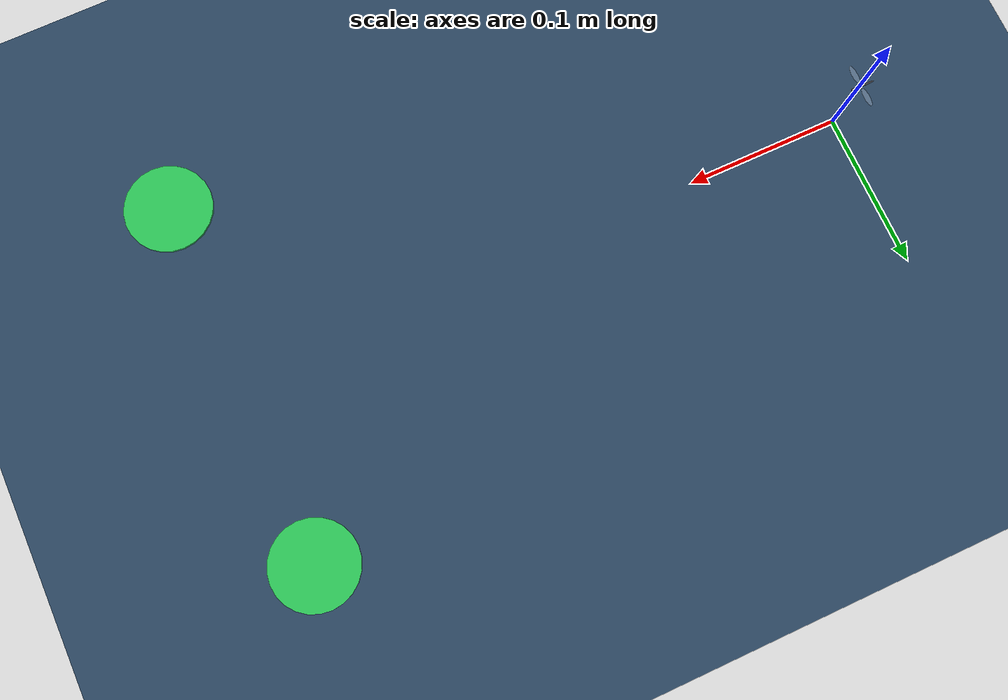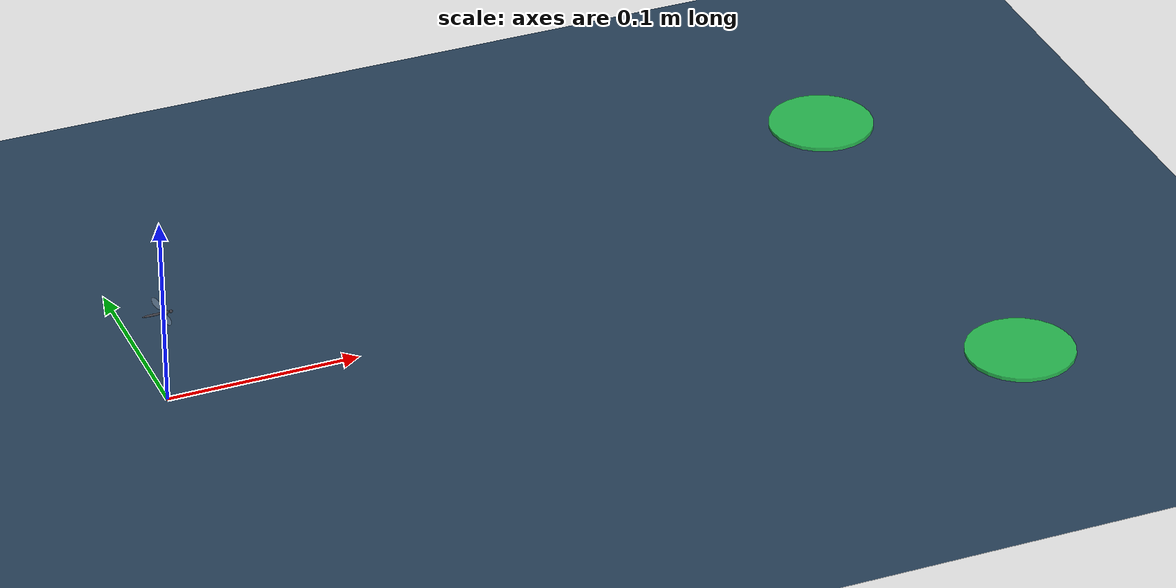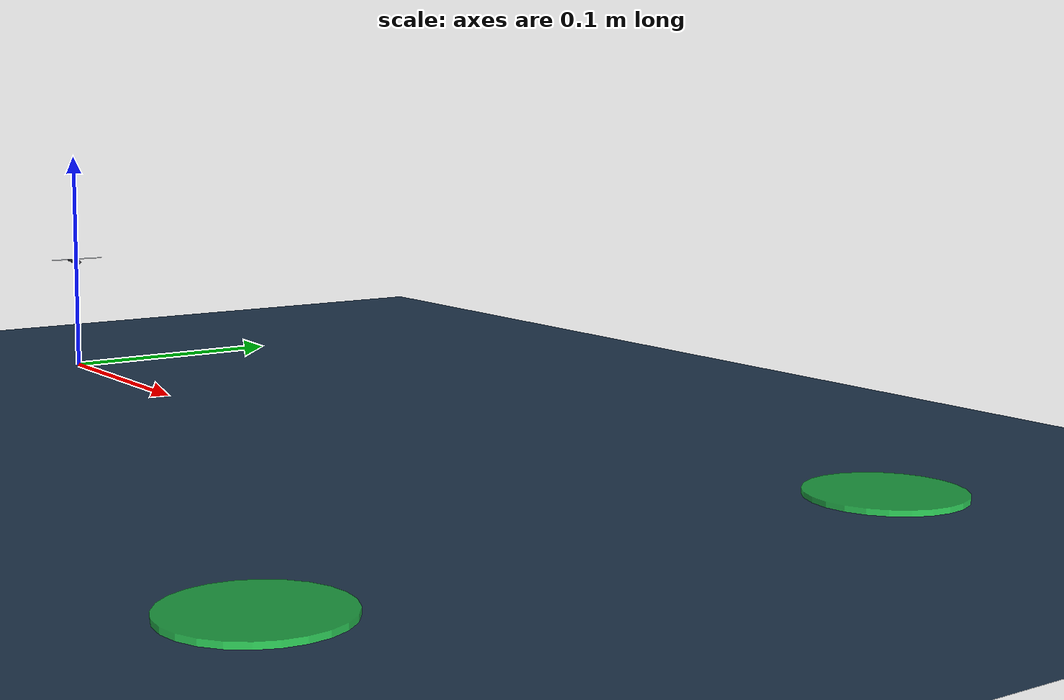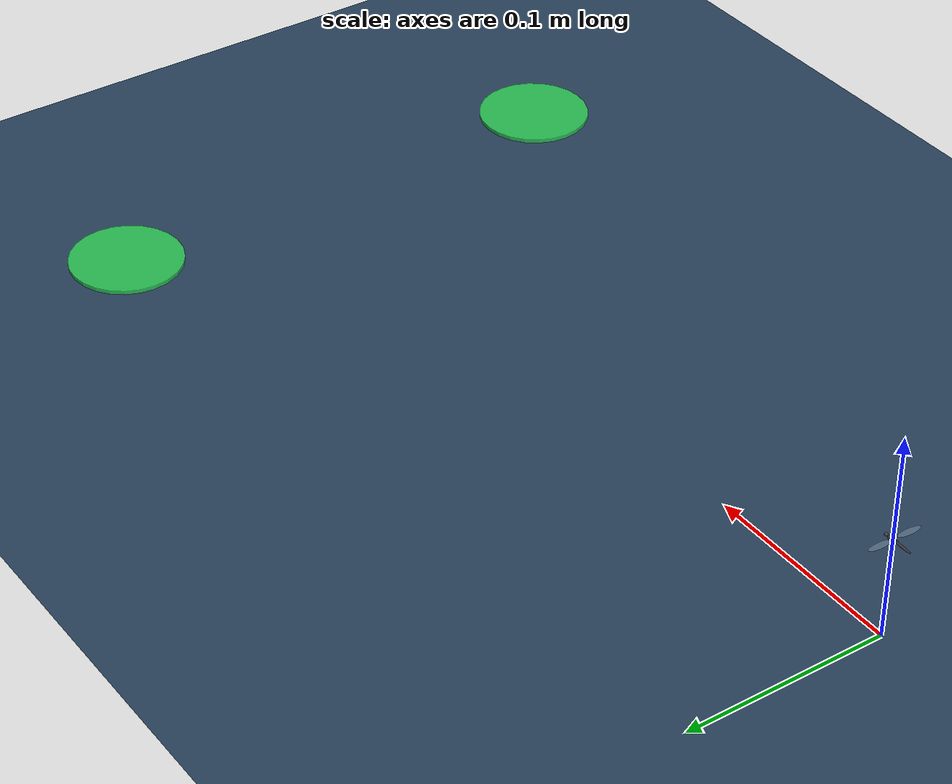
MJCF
<mujoco model="flapping_flyer">

  <option timestep="1e-4" gravity="0 0 -9.81" integrator="implicitfast"/>

  <!-- ===================== VISUALS (menagerie look) ===================== -->
  <visual>
    <headlight diffuse="0.6 0.6 0.6" ambient="0.3 0.3 0.3" specular="0 0 0"/>
    <rgba haze="0.15 0.25 0.35 1"/>
    <global azimuth="120" elevation="-20" offwidth="1280" offheight="960"/>
  </visual>

  <asset>
    <texture type="skybox" builtin="gradient" rgb1="0.3 0.5 0.7" rgb2="0 0 0"
             width="512" height="3072"/>
    <texture type="2d" name="groundplane" builtin="checker" mark="edge"
             rgb1="0.2 0.3 0.4" rgb2="0.1 0.2 0.3" markrgb="0.8 0.8 0.8"
             width="300" height="300"/>
    <material name="groundplane" texture="groundplane" texuniform="true"
              texrepeat="5 5" reflectance="0.2"/>
    <material name="thorax_mat" rgba="0.25 0.25 0.28 1"/>
    <material name="wing_mat"   rgba="0.55 0.62 0.70 0.45"/>
  </asset>

  <default>
    <joint damping="1e-8" armature="0"/>
    <geom density="1200"/>
  </default>

  <worldbody>
    <light pos="0 0 0.3" dir="0 0 -1" directional="true"
           diffuse="0.7 0.7 0.7"/>
    <geom name="floor" type="plane" size="0 0 0.01" material="groundplane"/>
    <geom name="bw0" type="box" pos="0.0000 0.0320 0.0400" size="0.0050 0.0050 0.0400" group="3" rgba="0.62 0.66 0.72 1" contype="0" conaffinity="0"/>
    <geom name="bw1" type="box" pos="0.0069 0.0320 0.0400" size="0.0050 0.0050 0.0400" group="3" rgba="0.62 0.66 0.72 1" contype="0" conaffinity="0"/>
    <geom name="bw2" type="box" pos="0.0138 0.0320 0.0400" size="0.0050 0.0050 0.0400" group="3" rgba="0.62 0.66 0.72 1" contype="0" conaffinity="0"/>
    <geom name="bw3" type="box" pos="0.0208 0.0320 0.0400" size="0.0050 0.0050 0.0400" group="3" rgba="0.62 0.66 0.72 1" contype="0" conaffinity="0"/>
    <geom name="bw4" type="box" pos="0.0277 0.0320 0.0400" size="0.0050 0.0050 0.0400" group="3" rgba="0.62 0.66 0.72 1" contype="0" conaffinity="0"/>
    <geom name="bw5" type="box" pos="0.0346 0.0320 0.0400" size="0.0050 0.0050 0.0400" group="3" rgba="0.62 0.66 0.72 1" contype="0" conaffinity="0"/>
    <geom name="bw6" type="box" pos="0.0415 0.0320 0.0400" size="0.0050 0.0050 0.0400" group="3" rgba="0.62 0.66 0.72 1" contype="0" conaffinity="0"/>
    <geom name="bw7" type="box" pos="0.0485 0.0320 0.0400" size="0.0050 0.0050 0.0400" group="3" rgba="0.62 0.66 0.72 1" contype="0" conaffinity="0"/>
    <geom name="bw8" type="box" pos="0.0554 0.0320 0.0400" size="0.0050 0.0050 0.0400" group="3" rgba="0.62 0.66 0.72 1" contype="0" conaffinity="0"/>
    <geom name="bw9" type="box" pos="0.0623 0.0320 0.0400" size="0.0050 0.0050 0.0400" group="3" rgba="0.62 0.66 0.72 1" contype="0" conaffinity="0"/>
    <geom name="bw10" type="box" pos="0.0692 0.0320 0.0400" size="0.0050 0.0050 0.0400" group="3" rgba="0.62 0.66 0.72 1" contype="0" conaffinity="0"/>
    <geom name="bw11" type="box" pos="0.0762 0.0320 0.0400" size="0.0050 0.0050 0.0400" group="3" rgba="0.62 0.66 0.72 1" contype="0" conaffinity="0"/>
    <geom name="bw12" type="box" pos="0.0831 0.0320 0.0400" size="0.0050 0.0050 0.0400" group="3" rgba="0.62 0.66 0.72 1" contype="0" conaffinity="0"/>
    <geom name="bw13" type="box" pos="0.0900 0.0320 0.0400" size="0.0050 0.0050 0.0400" group="3" rgba="0.62 0.66 0.72 1" contype="0" conaffinity="0"/>
    <geom name="bw14" type="box" pos="0.0969 0.0320 0.0400" size="0.0050 0.0050 0.0400" group="3" rgba="0.62 0.66 0.72 1" contype="0" conaffinity="0"/>
    <geom name="bw15" type="box" pos="0.1038 0.0320 0.0400" size="0.0050 0.0050 0.0400" group="3" rgba="0.62 0.66 0.72 1" contype="0" conaffinity="0"/>
    <geom name="bw16" type="box" pos="0.1108 0.0320 0.0400" size="0.0050 0.0050 0.0400" group="3" rgba="0.62 0.66 0.72 1" contype="0" conaffinity="0"/>
    <geom name="bw17" type="box" pos="0.1177 0.0320 0.0400" size="0.0050 0.0050 0.0400" group="3" rgba="0.62 0.66 0.72 1" contype="0" conaffinity="0"/>
    <geom name="bw18" type="box" pos="0.1246 0.0320 0.0400" size="0.0050 0.0050 0.0400" group="3" rgba="0.62 0.66 0.72 1" contype="0" conaffinity="0"/>
    <geom name="bw19" type="box" pos="0.1315 0.0320 0.0400" size="0.0050 0.0050 0.0400" group="3" rgba="0.62 0.66 0.72 1" contype="0" conaffinity="0"/>
    <geom name="bw20" type="box" pos="0.1385 0.0320 0.0400" size="0.0050 0.0050 0.0400" group="3" rgba="0.62 0.66 0.72 1" contype="0" conaffinity="0"/>
    <geom name="bw21" type="box" pos="0.1454 0.0320 0.0400" size="0.0050 0.0050 0.0400" group="3" rgba="0.62 0.66 0.72 1" contype="0" conaffinity="0"/>
    <geom name="bw22" type="box" pos="0.1523 0.0320 0.0400" size="0.0050 0.0050 0.0400" group="3" rgba="0.62 0.66 0.72 1" contype="0" conaffinity="0"/>
    <geom name="bw23" type="box" pos="0.1592 0.0320 0.0400" size="0.0050 0.0050 0.0400" group="3" rgba="0.62 0.66 0.72 1" contype="0" conaffinity="0"/>
    <geom name="bw24" type="box" pos="0.1662 0.0320 0.0400" size="0.0050 0.0050 0.0400" group="3" rgba="0.62 0.66 0.72 1" contype="0" conaffinity="0"/>
    <geom name="bw25" type="box" pos="0.1731 0.0320 0.0400" size="0.0050 0.0050 0.0400" group="3" rgba="0.62 0.66 0.72 1" contype="0" conaffinity="0"/>
    <geom name="bw26" type="box" pos="0.1800 0.0320 0.0400" size="0.0050 0.0050 0.0400" group="3" rgba="0.62 0.66 0.72 1" contype="0" conaffinity="0"/>
    <geom name="bw27" type="box" pos="0.1800 0.0320 0.0400" size="0.0050 0.0050 0.0400" group="3" rgba="0.62 0.66 0.72 1" contype="0" conaffinity="0"/>
    <geom name="bw28" type="box" pos="0.1860 0.0353 0.0400" size="0.0050 0.0050 0.0400" group="3" rgba="0.62 0.66 0.72 1" contype="0" conaffinity="0"/>
    <geom name="bw29" type="box" pos="0.1920 0.0386 0.0400" size="0.0050 0.0050 0.0400" group="3" rgba="0.62 0.66 0.72 1" contype="0" conaffinity="0"/>
    <geom name="bw30" type="box" pos="0.1980 0.0419 0.0400" size="0.0050 0.0050 0.0400" group="3" rgba="0.62 0.66 0.72 1" contype="0" conaffinity="0"/>
    <geom name="bw31" type="box" pos="0.2040 0.0453 0.0400" size="0.0050 0.0050 0.0400" group="3" rgba="0.62 0.66 0.72 1" contype="0" conaffinity="0"/>
    <geom name="bw32" type="box" pos="0.2100 0.0486 0.0400" size="0.0050 0.0050 0.0400" group="3" rgba="0.62 0.66 0.72 1" contype="0" conaffinity="0"/>
    <geom name="bw33" type="box" pos="0.2160 0.0519 0.0400" size="0.0050 0.0050 0.0400" group="3" rgba="0.62 0.66 0.72 1" contype="0" conaffinity="0"/>
    <geom name="bw34" type="box" pos="0.2220 0.0552 0.0400" size="0.0050 0.0050 0.0400" group="3" rgba="0.62 0.66 0.72 1" contype="0" conaffinity="0"/>
    <geom name="bw35" type="box" pos="0.2280 0.0585 0.0400" size="0.0050 0.0050 0.0400" group="3" rgba="0.62 0.66 0.72 1" contype="0" conaffinity="0"/>
    <geom name="bw36" type="box" pos="0.2340 0.0618 0.0400" size="0.0050 0.0050 0.0400" group="3" rgba="0.62 0.66 0.72 1" contype="0" conaffinity="0"/>
    <geom name="bw37" type="box" pos="0.2400 0.0651 0.0400" size="0.0050 0.0050 0.0400" group="3" rgba="0.62 0.66 0.72 1" contype="0" conaffinity="0"/>
    <geom name="bw38" type="box" pos="0.2460 0.0684 0.0400" size="0.0050 0.0050 0.0400" group="3" rgba="0.62 0.66 0.72 1" contype="0" conaffinity="0"/>
    <geom name="bw39" type="box" pos="0.2520 0.0718 0.0400" size="0.0050 0.0050 0.0400" group="3" rgba="0.62 0.66 0.72 1" contype="0" conaffinity="0"/>
    <geom name="bw40" type="box" pos="0.2580 0.0751 0.0400" size="0.0050 0.0050 0.0400" group="3" rgba="0.62 0.66 0.72 1" contype="0" conaffinity="0"/>
    <geom name="bw41" type="box" pos="0.2641 0.0784 0.0400" size="0.0050 0.0050 0.0400" group="3" rgba="0.62 0.66 0.72 1" contype="0" conaffinity="0"/>
    <geom name="bw42" type="box" pos="0.2701 0.0817 0.0400" size="0.0050 0.0050 0.0400" group="3" rgba="0.62 0.66 0.72 1" contype="0" conaffinity="0"/>
    <geom name="bw43" type="box" pos="0.2761 0.0850 0.0400" size="0.0050 0.0050 0.0400" group="3" rgba="0.62 0.66 0.72 1" contype="0" conaffinity="0"/>
    <geom name="bw44" type="box" pos="0.2821 0.0883 0.0400" size="0.0050 0.0050 0.0400" group="3" rgba="0.62 0.66 0.72 1" contype="0" conaffinity="0"/>
    <geom name="bw45" type="box" pos="0.2881 0.0916 0.0400" size="0.0050 0.0050 0.0400" group="3" rgba="0.62 0.66 0.72 1" contype="0" conaffinity="0"/>
    <geom name="bw46" type="box" pos="0.2941 0.0950 0.0400" size="0.0050 0.0050 0.0400" group="3" rgba="0.62 0.66 0.72 1" contype="0" conaffinity="0"/>
    <geom name="bw47" type="box" pos="0.3001 0.0983 0.0400" size="0.0050 0.0050 0.0400" group="3" rgba="0.62 0.66 0.72 1" contype="0" conaffinity="0"/>
    <geom name="bw48" type="box" pos="0.3061 0.1016 0.0400" size="0.0050 0.0050 0.0400" group="3" rgba="0.62 0.66 0.72 1" contype="0" conaffinity="0"/>
    <geom name="bw49" type="box" pos="0.3121 0.1049 0.0400" size="0.0050 0.0050 0.0400" group="3" rgba="0.62 0.66 0.72 1" contype="0" conaffinity="0"/>
    <geom name="bw50" type="box" pos="0.3181 0.1082 0.0400" size="0.0050 0.0050 0.0400" group="3" rgba="0.62 0.66 0.72 1" contype="0" conaffinity="0"/>
    <geom name="bw51" type="box" pos="0.3241 0.1115 0.0400" size="0.0050 0.0050 0.0400" group="3" rgba="0.62 0.66 0.72 1" contype="0" conaffinity="0"/>
    <geom name="bw52" type="box" pos="0.3301 0.1148 0.0400" size="0.0050 0.0050 0.0400" group="3" rgba="0.62 0.66 0.72 1" contype="0" conaffinity="0"/>
    <geom name="bw53" type="box" pos="0.3361 0.1181 0.0400" size="0.0050 0.0050 0.0400" group="3" rgba="0.62 0.66 0.72 1" contype="0" conaffinity="0"/>
    <geom name="bw54" type="box" pos="0.3421 0.1215 0.0400" size="0.0050 0.0050 0.0400" group="3" rgba="0.62 0.66 0.72 1" contype="0" conaffinity="0"/>
    <geom name="bw55" type="box" pos="0.3481 0.1248 0.0400" size="0.0050 0.0050 0.0400" group="3" rgba="0.62 0.66 0.72 1" contype="0" conaffinity="0"/>
    <geom name="bw56" type="box" pos="0.3541 0.1281 0.0400" size="0.0050 0.0050 0.0400" group="3" rgba="0.62 0.66 0.72 1" contype="0" conaffinity="0"/>
    <geom name="bw57" type="box" pos="0.3601 0.1314 0.0400" size="0.0050 0.0050 0.0400" group="3" rgba="0.62 0.66 0.72 1" contype="0" conaffinity="0"/>
    <geom name="bw58" type="box" pos="0.3661 0.1347 0.0400" size="0.0050 0.0050 0.0400" group="3" rgba="0.62 0.66 0.72 1" contype="0" conaffinity="0"/>
    <geom name="bw59" type="box" pos="0.3721 0.1380 0.0400" size="0.0050 0.0050 0.0400" group="3" rgba="0.62 0.66 0.72 1" contype="0" conaffinity="0"/>
    <geom name="bw60" type="box" pos="0.3781 0.1413 0.0400" size="0.0050 0.0050 0.0400" group="3" rgba="0.62 0.66 0.72 1" contype="0" conaffinity="0"/>
    <geom name="bw61" type="box" pos="0.3841 0.1447 0.0400" size="0.0050 0.0050 0.0400" group="3" rgba="0.62 0.66 0.72 1" contype="0" conaffinity="0"/>
    <geom name="bw62" type="box" pos="0.3901 0.1480 0.0400" size="0.0050 0.0050 0.0400" group="3" rgba="0.62 0.66 0.72 1" contype="0" conaffinity="0"/>
    <geom name="bw63" type="box" pos="0.0000 -0.0320 0.0400" size="0.0050 0.0050 0.0400" group="3" rgba="0.62 0.66 0.72 1" contype="0" conaffinity="0"/>
    <geom name="bw64" type="box" pos="0.0069 -0.0320 0.0400" size="0.0050 0.0050 0.0400" group="3" rgba="0.62 0.66 0.72 1" contype="0" conaffinity="0"/>
    <geom name="bw65" type="box" pos="0.0138 -0.0320 0.0400" size="0.0050 0.0050 0.0400" group="3" rgba="0.62 0.66 0.72 1" contype="0" conaffinity="0"/>
    <geom name="bw66" type="box" pos="0.0208 -0.0320 0.0400" size="0.0050 0.0050 0.0400" group="3" rgba="0.62 0.66 0.72 1" contype="0" conaffinity="0"/>
    <geom name="bw67" type="box" pos="0.0277 -0.0320 0.0400" size="0.0050 0.0050 0.0400" group="3" rgba="0.62 0.66 0.72 1" contype="0" conaffinity="0"/>
    <geom name="bw68" type="box" pos="0.0346 -0.0320 0.0400" size="0.0050 0.0050 0.0400" group="3" rgba="0.62 0.66 0.72 1" contype="0" conaffinity="0"/>
    <geom name="bw69" type="box" pos="0.0415 -0.0320 0.0400" size="0.0050 0.0050 0.0400" group="3" rgba="0.62 0.66 0.72 1" contype="0" conaffinity="0"/>
    <geom name="bw70" type="box" pos="0.0485 -0.0320 0.0400" size="0.0050 0.0050 0.0400" group="3" rgba="0.62 0.66 0.72 1" contype="0" conaffinity="0"/>
    <geom name="bw71" type="box" pos="0.0554 -0.0320 0.0400" size="0.0050 0.0050 0.0400" group="3" rgba="0.62 0.66 0.72 1" contype="0" conaffinity="0"/>
    <geom name="bw72" type="box" pos="0.0623 -0.0320 0.0400" size="0.0050 0.0050 0.0400" group="3" rgba="0.62 0.66 0.72 1" contype="0" conaffinity="0"/>
    <geom name="bw73" type="box" pos="0.0692 -0.0320 0.0400" size="0.0050 0.0050 0.0400" group="3" rgba="0.62 0.66 0.72 1" contype="0" conaffinity="0"/>
    <geom name="bw74" type="box" pos="0.0762 -0.0320 0.0400" size="0.0050 0.0050 0.0400" group="3" rgba="0.62 0.66 0.72 1" contype="0" conaffinity="0"/>
    <geom name="bw75" type="box" pos="0.0831 -0.0320 0.0400" size="0.0050 0.0050 0.0400" group="3" rgba="0.62 0.66 0.72 1" contype="0" conaffinity="0"/>
    <geom name="bw76" type="box" pos="0.0900 -0.0320 0.0400" size="0.0050 0.0050 0.0400" group="3" rgba="0.62 0.66 0.72 1" contype="0" conaffinity="0"/>
    <geom name="bw77" type="box" pos="0.0969 -0.0320 0.0400" size="0.0050 0.0050 0.0400" group="3" rgba="0.62 0.66 0.72 1" contype="0" conaffinity="0"/>
    <geom name="bw78" type="box" pos="0.1038 -0.0320 0.0400" size="0.0050 0.0050 0.0400" group="3" rgba="0.62 0.66 0.72 1" contype="0" conaffinity="0"/>
    <geom name="bw79" type="box" pos="0.1108 -0.0320 0.0400" size="0.0050 0.0050 0.0400" group="3" rgba="0.62 0.66 0.72 1" contype="0" conaffinity="0"/>
    <geom name="bw80" type="box" pos="0.1177 -0.0320 0.0400" size="0.0050 0.0050 0.0400" group="3" rgba="0.62 0.66 0.72 1" contype="0" conaffinity="0"/>
    <geom name="bw81" type="box" pos="0.1246 -0.0320 0.0400" size="0.0050 0.0050 0.0400" group="3" rgba="0.62 0.66 0.72 1" contype="0" conaffinity="0"/>
    <geom name="bw82" type="box" pos="0.1315 -0.0320 0.0400" size="0.0050 0.0050 0.0400" group="3" rgba="0.62 0.66 0.72 1" contype="0" conaffinity="0"/>
    <geom name="bw83" type="box" pos="0.1385 -0.0320 0.0400" size="0.0050 0.0050 0.0400" group="3" rgba="0.62 0.66 0.72 1" contype="0" conaffinity="0"/>
    <geom name="bw84" type="box" pos="0.1454 -0.0320 0.0400" size="0.0050 0.0050 0.0400" group="3" rgba="0.62 0.66 0.72 1" contype="0" conaffinity="0"/>
    <geom name="bw85" type="box" pos="0.1523 -0.0320 0.0400" size="0.0050 0.0050 0.0400" group="3" rgba="0.62 0.66 0.72 1" contype="0" conaffinity="0"/>
    <geom name="bw86" type="box" pos="0.1592 -0.0320 0.0400" size="0.0050 0.0050 0.0400" group="3" rgba="0.62 0.66 0.72 1" contype="0" conaffinity="0"/>
    <geom name="bw87" type="box" pos="0.1662 -0.0320 0.0400" size="0.0050 0.0050 0.0400" group="3" rgba="0.62 0.66 0.72 1" contype="0" conaffinity="0"/>
    <geom name="bw88" type="box" pos="0.1731 -0.0320 0.0400" size="0.0050 0.0050 0.0400" group="3" rgba="0.62 0.66 0.72 1" contype="0" conaffinity="0"/>
    <geom name="bw89" type="box" pos="0.1800 -0.0320 0.0400" size="0.0050 0.0050 0.0400" group="3" rgba="0.62 0.66 0.72 1" contype="0" conaffinity="0"/>
    <geom name="bw90" type="box" pos="0.1800 -0.0320 0.0400" size="0.0050 0.0050 0.0400" group="3" rgba="0.62 0.66 0.72 1" contype="0" conaffinity="0"/>
    <geom name="bw91" type="box" pos="0.1860 -0.0353 0.0400" size="0.0050 0.0050 0.0400" group="3" rgba="0.62 0.66 0.72 1" contype="0" conaffinity="0"/>
    <geom name="bw92" type="box" pos="0.1920 -0.0386 0.0400" size="0.0050 0.0050 0.0400" group="3" rgba="0.62 0.66 0.72 1" contype="0" conaffinity="0"/>
    <geom name="bw93" type="box" pos="0.1980 -0.0419 0.0400" size="0.0050 0.0050 0.0400" group="3" rgba="0.62 0.66 0.72 1" contype="0" conaffinity="0"/>
    <geom name="bw94" type="box" pos="0.2040 -0.0453 0.0400" size="0.0050 0.0050 0.0400" group="3" rgba="0.62 0.66 0.72 1" contype="0" conaffinity="0"/>
    <geom name="bw95" type="box" pos="0.2100 -0.0486 0.0400" size="0.0050 0.0050 0.0400" group="3" rgba="0.62 0.66 0.72 1" contype="0" conaffinity="0"/>
    <geom name="bw96" type="box" pos="0.2160 -0.0519 0.0400" size="0.0050 0.0050 0.0400" group="3" rgba="0.62 0.66 0.72 1" contype="0" conaffinity="0"/>
    <geom name="bw97" type="box" pos="0.2220 -0.0552 0.0400" size="0.0050 0.0050 0.0400" group="3" rgba="0.62 0.66 0.72 1" contype="0" conaffinity="0"/>
    <geom name="bw98" type="box" pos="0.2280 -0.0585 0.0400" size="0.0050 0.0050 0.0400" group="3" rgba="0.62 0.66 0.72 1" contype="0" conaffinity="0"/>
    <geom name="bw99" type="box" pos="0.2340 -0.0618 0.0400" size="0.0050 0.0050 0.0400" group="3" rgba="0.62 0.66 0.72 1" contype="0" conaffinity="0"/>
    <geom name="bw100" type="box" pos="0.2400 -0.0651 0.0400" size="0.0050 0.0050 0.0400" group="3" rgba="0.62 0.66 0.72 1" contype="0" conaffinity="0"/>
    <geom name="bw101" type="box" pos="0.2460 -0.0684 0.0400" size="0.0050 0.0050 0.0400" group="3" rgba="0.62 0.66 0.72 1" contype="0" conaffinity="0"/>
    <geom name="bw102" type="box" pos="0.2520 -0.0718 0.0400" size="0.0050 0.0050 0.0400" group="3" rgba="0.62 0.66 0.72 1" contype="0" conaffinity="0"/>
    <geom name="bw103" type="box" pos="0.2580 -0.0751 0.0400" size="0.0050 0.0050 0.0400" group="3" rgba="0.62 0.66 0.72 1" contype="0" conaffinity="0"/>
    <geom name="bw104" type="box" pos="0.2641 -0.0784 0.0400" size="0.0050 0.0050 0.0400" group="3" rgba="0.62 0.66 0.72 1" contype="0" conaffinity="0"/>
    <geom name="bw105" type="box" pos="0.2701 -0.0817 0.0400" size="0.0050 0.0050 0.0400" group="3" rgba="0.62 0.66 0.72 1" contype="0" conaffinity="0"/>
    <geom name="bw106" type="box" pos="0.2761 -0.0850 0.0400" size="0.0050 0.0050 0.0400" group="3" rgba="0.62 0.66 0.72 1" contype="0" conaffinity="0"/>
    <geom name="bw107" type="box" pos="0.2821 -0.0883 0.0400" size="0.0050 0.0050 0.0400" group="3" rgba="0.62 0.66 0.72 1" contype="0" conaffinity="0"/>
    <geom name="bw108" type="box" pos="0.2881 -0.0916 0.0400" size="0.0050 0.0050 0.0400" group="3" rgba="0.62 0.66 0.72 1" contype="0" conaffinity="0"/>
    <geom name="bw109" type="box" pos="0.2941 -0.0950 0.0400" size="0.0050 0.0050 0.0400" group="3" rgba="0.62 0.66 0.72 1" contype="0" conaffinity="0"/>
    <geom name="bw110" type="box" pos="0.3001 -0.0983 0.0400" size="0.0050 0.0050 0.0400" group="3" rgba="0.62 0.66 0.72 1" contype="0" conaffinity="0"/>
    <geom name="bw111" type="box" pos="0.3061 -0.1016 0.0400" size="0.0050 0.0050 0.0400" group="3" rgba="0.62 0.66 0.72 1" contype="0" conaffinity="0"/>
    <geom name="bw112" type="box" pos="0.3121 -0.1049 0.0400" size="0.0050 0.0050 0.0400" group="3" rgba="0.62 0.66 0.72 1" contype="0" conaffinity="0"/>
    <geom name="bw113" type="box" pos="0.3181 -0.1082 0.0400" size="0.0050 0.0050 0.0400" group="3" rgba="0.62 0.66 0.72 1" contype="0" conaffinity="0"/>
    <geom name="bw114" type="box" pos="0.3241 -0.1115 0.0400" size="0.0050 0.0050 0.0400" group="3" rgba="0.62 0.66 0.72 1" contype="0" conaffinity="0"/>
    <geom name="bw115" type="box" pos="0.3301 -0.1148 0.0400" size="0.0050 0.0050 0.0400" group="3" rgba="0.62 0.66 0.72 1" contype="0" conaffinity="0"/>
    <geom name="bw116" type="box" pos="0.3361 -0.1181 0.0400" size="0.0050 0.0050 0.0400" group="3" rgba="0.62 0.66 0.72 1" contype="0" conaffinity="0"/>
    <geom name="bw117" type="box" pos="0.3421 -0.1215 0.0400" size="0.0050 0.0050 0.0400" group="3" rgba="0.62 0.66 0.72 1" contype="0" conaffinity="0"/>
    <geom name="bw118" type="box" pos="0.3481 -0.1248 0.0400" size="0.0050 0.0050 0.0400" group="3" rgba="0.62 0.66 0.72 1" contype="0" conaffinity="0"/>
    <geom name="bw119" type="box" pos="0.3541 -0.1281 0.0400" size="0.0050 0.0050 0.0400" group="3" rgba="0.62 0.66 0.72 1" contype="0" conaffinity="0"/>
    <geom name="bw120" type="box" pos="0.3601 -0.1314 0.0400" size="0.0050 0.0050 0.0400" group="3" rgba="0.62 0.66 0.72 1" contype="0" conaffinity="0"/>
    <geom name="bw121" type="box" pos="0.3661 -0.1347 0.0400" size="0.0050 0.0050 0.0400" group="3" rgba="0.62 0.66 0.72 1" contype="0" conaffinity="0"/>
    <geom name="bw122" type="box" pos="0.3721 -0.1380 0.0400" size="0.0050 0.0050 0.0400" group="3" rgba="0.62 0.66 0.72 1" contype="0" conaffinity="0"/>
    <geom name="bw123" type="box" pos="0.3781 -0.1413 0.0400" size="0.0050 0.0050 0.0400" group="3" rgba="0.62 0.66 0.72 1" contype="0" conaffinity="0"/>
    <geom name="bw124" type="box" pos="0.3841 -0.1447 0.0400" size="0.0050 0.0050 0.0400" group="3" rgba="0.62 0.66 0.72 1" contype="0" conaffinity="0"/>
    <geom name="bw125" type="box" pos="0.3901 -0.1480 0.0400" size="0.0050 0.0050 0.0400" group="3" rgba="0.62 0.66 0.72 1" contype="0" conaffinity="0"/>
    <geom name="bw126" type="box" pos="0.4202 0.0915 0.0400" size="0.0050 0.0050 0.0400" group="3" rgba="0.62 0.66 0.72 1" contype="0" conaffinity="0"/>
    <geom name="bw127" type="box" pos="0.4140 0.0882 0.0400" size="0.0050 0.0050 0.0400" group="3" rgba="0.62 0.66 0.72 1" contype="0" conaffinity="0"/>
    <geom name="bw128" type="box" pos="0.4079 0.0849 0.0400" size="0.0050 0.0050 0.0400" group="3" rgba="0.62 0.66 0.72 1" contype="0" conaffinity="0"/>
    <geom name="bw129" type="box" pos="0.4017 0.0817 0.0400" size="0.0050 0.0050 0.0400" group="3" rgba="0.62 0.66 0.72 1" contype="0" conaffinity="0"/>
    <geom name="bw130" type="box" pos="0.3956 0.0784 0.0400" size="0.0050 0.0050 0.0400" group="3" rgba="0.62 0.66 0.72 1" contype="0" conaffinity="0"/>
    <geom name="bw131" type="box" pos="0.3895 0.0751 0.0400" size="0.0050 0.0050 0.0400" group="3" rgba="0.62 0.66 0.72 1" contype="0" conaffinity="0"/>
    <geom name="bw132" type="box" pos="0.3833 0.0719 0.0400" size="0.0050 0.0050 0.0400" group="3" rgba="0.62 0.66 0.72 1" contype="0" conaffinity="0"/>
    <geom name="bw133" type="box" pos="0.3772 0.0686 0.0400" size="0.0050 0.0050 0.0400" group="3" rgba="0.62 0.66 0.72 1" contype="0" conaffinity="0"/>
    <geom name="bw134" type="box" pos="0.3710 0.0653 0.0400" size="0.0050 0.0050 0.0400" group="3" rgba="0.62 0.66 0.72 1" contype="0" conaffinity="0"/>
    <geom name="bw135" type="box" pos="0.3649 0.0621 0.0400" size="0.0050 0.0050 0.0400" group="3" rgba="0.62 0.66 0.72 1" contype="0" conaffinity="0"/>
    <geom name="bw136" type="box" pos="0.3587 0.0588 0.0400" size="0.0050 0.0050 0.0400" group="3" rgba="0.62 0.66 0.72 1" contype="0" conaffinity="0"/>
    <geom name="bw137" type="box" pos="0.3526 0.0555 0.0400" size="0.0050 0.0050 0.0400" group="3" rgba="0.62 0.66 0.72 1" contype="0" conaffinity="0"/>
    <geom name="bw138" type="box" pos="0.3465 0.0523 0.0400" size="0.0050 0.0050 0.0400" group="3" rgba="0.62 0.66 0.72 1" contype="0" conaffinity="0"/>
    <geom name="bw139" type="box" pos="0.3403 0.0490 0.0400" size="0.0050 0.0050 0.0400" group="3" rgba="0.62 0.66 0.72 1" contype="0" conaffinity="0"/>
    <geom name="bw140" type="box" pos="0.3342 0.0457 0.0400" size="0.0050 0.0050 0.0400" group="3" rgba="0.62 0.66 0.72 1" contype="0" conaffinity="0"/>
    <geom name="bw141" type="box" pos="0.3280 0.0425 0.0400" size="0.0050 0.0050 0.0400" group="3" rgba="0.62 0.66 0.72 1" contype="0" conaffinity="0"/>
    <geom name="bw142" type="box" pos="0.3219 0.0392 0.0400" size="0.0050 0.0050 0.0400" group="3" rgba="0.62 0.66 0.72 1" contype="0" conaffinity="0"/>
    <geom name="bw143" type="box" pos="0.3157 0.0359 0.0400" size="0.0050 0.0050 0.0400" group="3" rgba="0.62 0.66 0.72 1" contype="0" conaffinity="0"/>
    <geom name="bw144" type="box" pos="0.3096 0.0327 0.0400" size="0.0050 0.0050 0.0400" group="3" rgba="0.62 0.66 0.72 1" contype="0" conaffinity="0"/>
    <geom name="bw145" type="box" pos="0.3035 0.0294 0.0400" size="0.0050 0.0050 0.0400" group="3" rgba="0.62 0.66 0.72 1" contype="0" conaffinity="0"/>
    <geom name="bw146" type="box" pos="0.2973 0.0261 0.0400" size="0.0050 0.0050 0.0400" group="3" rgba="0.62 0.66 0.72 1" contype="0" conaffinity="0"/>
    <geom name="bw147" type="box" pos="0.2912 0.0229 0.0400" size="0.0050 0.0050 0.0400" group="3" rgba="0.62 0.66 0.72 1" contype="0" conaffinity="0"/>
    <geom name="bw148" type="box" pos="0.2850 0.0196 0.0400" size="0.0050 0.0050 0.0400" group="3" rgba="0.62 0.66 0.72 1" contype="0" conaffinity="0"/>
    <geom name="bw149" type="box" pos="0.2789 0.0163 0.0400" size="0.0050 0.0050 0.0400" group="3" rgba="0.62 0.66 0.72 1" contype="0" conaffinity="0"/>
    <geom name="bw150" type="box" pos="0.2727 0.0131 0.0400" size="0.0050 0.0050 0.0400" group="3" rgba="0.62 0.66 0.72 1" contype="0" conaffinity="0"/>
    <geom name="bw151" type="box" pos="0.2666 0.0098 0.0400" size="0.0050 0.0050 0.0400" group="3" rgba="0.62 0.66 0.72 1" contype="0" conaffinity="0"/>
    <geom name="bw152" type="box" pos="0.2604 0.0065 0.0400" size="0.0050 0.0050 0.0400" group="3" rgba="0.62 0.66 0.72 1" contype="0" conaffinity="0"/>
    <geom name="bw153" type="box" pos="0.2543 0.0033 0.0400" size="0.0050 0.0050 0.0400" group="3" rgba="0.62 0.66 0.72 1" contype="0" conaffinity="0"/>
    <geom name="bw154" type="box" pos="0.2482 0.0000 0.0400" size="0.0050 0.0050 0.0400" group="3" rgba="0.62 0.66 0.72 1" contype="0" conaffinity="0"/>
    <geom name="bw155" type="box" pos="0.2482 0.0000 0.0400" size="0.0050 0.0050 0.0400" group="3" rgba="0.62 0.66 0.72 1" contype="0" conaffinity="0"/>
    <geom name="bw156" type="box" pos="0.2543 -0.0033 0.0400" size="0.0050 0.0050 0.0400" group="3" rgba="0.62 0.66 0.72 1" contype="0" conaffinity="0"/>
    <geom name="bw157" type="box" pos="0.2604 -0.0065 0.0400" size="0.0050 0.0050 0.0400" group="3" rgba="0.62 0.66 0.72 1" contype="0" conaffinity="0"/>
    <geom name="bw158" type="box" pos="0.2666 -0.0098 0.0400" size="0.0050 0.0050 0.0400" group="3" rgba="0.62 0.66 0.72 1" contype="0" conaffinity="0"/>
    <geom name="bw159" type="box" pos="0.2727 -0.0131 0.0400" size="0.0050 0.0050 0.0400" group="3" rgba="0.62 0.66 0.72 1" contype="0" conaffinity="0"/>
    <geom name="bw160" type="box" pos="0.2789 -0.0163 0.0400" size="0.0050 0.0050 0.0400" group="3" rgba="0.62 0.66 0.72 1" contype="0" conaffinity="0"/>
    <geom name="bw161" type="box" pos="0.2850 -0.0196 0.0400" size="0.0050 0.0050 0.0400" group="3" rgba="0.62 0.66 0.72 1" contype="0" conaffinity="0"/>
    <geom name="bw162" type="box" pos="0.2912 -0.0229 0.0400" size="0.0050 0.0050 0.0400" group="3" rgba="0.62 0.66 0.72 1" contype="0" conaffinity="0"/>
    <geom name="bw163" type="box" pos="0.2973 -0.0261 0.0400" size="0.0050 0.0050 0.0400" group="3" rgba="0.62 0.66 0.72 1" contype="0" conaffinity="0"/>
    <geom name="bw164" type="box" pos="0.3035 -0.0294 0.0400" size="0.0050 0.0050 0.0400" group="3" rgba="0.62 0.66 0.72 1" contype="0" conaffinity="0"/>
    <geom name="bw165" type="box" pos="0.3096 -0.0327 0.0400" size="0.0050 0.0050 0.0400" group="3" rgba="0.62 0.66 0.72 1" contype="0" conaffinity="0"/>
    <geom name="bw166" type="box" pos="0.3157 -0.0359 0.0400" size="0.0050 0.0050 0.0400" group="3" rgba="0.62 0.66 0.72 1" contype="0" conaffinity="0"/>
    <geom name="bw167" type="box" pos="0.3219 -0.0392 0.0400" size="0.0050 0.0050 0.0400" group="3" rgba="0.62 0.66 0.72 1" contype="0" conaffinity="0"/>
    <geom name="bw168" type="box" pos="0.3280 -0.0425 0.0400" size="0.0050 0.0050 0.0400" group="3" rgba="0.62 0.66 0.72 1" contype="0" conaffinity="0"/>
    <geom name="bw169" type="box" pos="0.3342 -0.0457 0.0400" size="0.0050 0.0050 0.0400" group="3" rgba="0.62 0.66 0.72 1" contype="0" conaffinity="0"/>
    <geom name="bw170" type="box" pos="0.3403 -0.0490 0.0400" size="0.0050 0.0050 0.0400" group="3" rgba="0.62 0.66 0.72 1" contype="0" conaffinity="0"/>
    <geom name="bw171" type="box" pos="0.3465 -0.0523 0.0400" size="0.0050 0.0050 0.0400" group="3" rgba="0.62 0.66 0.72 1" contype="0" conaffinity="0"/>
    <geom name="bw172" type="box" pos="0.3526 -0.0555 0.0400" size="0.0050 0.0050 0.0400" group="3" rgba="0.62 0.66 0.72 1" contype="0" conaffinity="0"/>
    <geom name="bw173" type="box" pos="0.3587 -0.0588 0.0400" size="0.0050 0.0050 0.0400" group="3" rgba="0.62 0.66 0.72 1" contype="0" conaffinity="0"/>
    <geom name="bw174" type="box" pos="0.3649 -0.0621 0.0400" size="0.0050 0.0050 0.0400" group="3" rgba="0.62 0.66 0.72 1" contype="0" conaffinity="0"/>
    <geom name="bw175" type="box" pos="0.3710 -0.0653 0.0400" size="0.0050 0.0050 0.0400" group="3" rgba="0.62 0.66 0.72 1" contype="0" conaffinity="0"/>
    <geom name="bw176" type="box" pos="0.3772 -0.0686 0.0400" size="0.0050 0.0050 0.0400" group="3" rgba="0.62 0.66 0.72 1" contype="0" conaffinity="0"/>
    <geom name="bw177" type="box" pos="0.3833 -0.0719 0.0400" size="0.0050 0.0050 0.0400" group="3" rgba="0.62 0.66 0.72 1" contype="0" conaffinity="0"/>
    <geom name="bw178" type="box" pos="0.3895 -0.0751 0.0400" size="0.0050 0.0050 0.0400" group="3" rgba="0.62 0.66 0.72 1" contype="0" conaffinity="0"/>
    <geom name="bw179" type="box" pos="0.3956 -0.0784 0.0400" size="0.0050 0.0050 0.0400" group="3" rgba="0.62 0.66 0.72 1" contype="0" conaffinity="0"/>
    <geom name="bw180" type="box" pos="0.4017 -0.0817 0.0400" size="0.0050 0.0050 0.0400" group="3" rgba="0.62 0.66 0.72 1" contype="0" conaffinity="0"/>
    <geom name="bw181" type="box" pos="0.4079 -0.0849 0.0400" size="0.0050 0.0050 0.0400" group="3" rgba="0.62 0.66 0.72 1" contype="0" conaffinity="0"/>
    <geom name="bw182" type="box" pos="0.4140 -0.0882 0.0400" size="0.0050 0.0050 0.0400" group="3" rgba="0.62 0.66 0.72 1" contype="0" conaffinity="0"/>
    <geom name="bw183" type="box" pos="0.4202 -0.0915 0.0400" size="0.0050 0.0050 0.0400" group="3" rgba="0.62 0.66 0.72 1" contype="0" conaffinity="0"/>
    <geom name="fin0" type="cylinder" pos="0.4052 0.1197 0.001" size="0.0280 0.001" rgba="0.2 0.85 0.35 0.85" group="2" contype="0" conaffinity="0"/>
    <geom name="fin1" type="cylinder" pos="0.4052 -0.1197 0.001" size="0.0280 0.001" rgba="0.2 0.85 0.35 0.85" group="2" contype="0" conaffinity="0"/>

    <body name="thorax" pos="0 0 0.05">

      <!-- main flight mass: thorax block, just below the wing hinges -->
      <geom name="thorax_g" type="ellipsoid" pos="0.001 0 0"
            size="0.0020 0.0012 0.0012" mass="60e-6" material="thorax_mat"/>
      <!-- head: small, forward -->
      <geom name="head_g" type="sphere" pos="0.0040 0 0"
            size="0.0008" mass="3e-6" material="thorax_mat"/>
      <!-- abdomen / tail: long, THIN, LIGHT, trailing aft. Tapered ellipsoid
           reads as an abdomen and gives a little aft area for pitch stability
           at almost no mass cost. -->
      <geom name="tail_g" type="ellipsoid" pos="-0.0055 0 0"
            size="0.0050 0.0006 0.0006" mass="12e-6" material="thorax_mat"/>

      <!-- halteres: tiny nubs just behind the wing bases. Visual now,
           EARMARKED as the future rate sensor. Mass ~0.1 mg each (negligible). -->
      <geom name="haltere_R" type="capsule" fromto="-0.0008 0.0007 0  -0.0016 0.0016 -0.0004"
            size="0.00012" mass="1e-7" material="thorax_mat"/>
      <geom name="haltere_L" type="capsule" fromto="-0.0008 -0.0007 0  -0.0016 -0.0016 -0.0004"
            size="0.00012" mass="1e-7" material="thorax_mat"/>

      <!-- ============ RIGHT WING (extends +y) ============
           shoulder above & right of the thorax centre -->
      <body name="stroke_R" pos="0 0.0010 0.0012">
        <joint name="stroke_R" type="hinge" axis="0 0 1" range="-90 90" armature="1e-8"/>
        <inertial pos="0 0 0" mass="1e-7" diaginertia="1e-13 1e-13 1e-13"/>
        <body name="wing_R" pos="0 0 0">
          <joint name="pitch_R" type="hinge" axis="0 1 0" range="-120 120" armature="1e-8"/>
          <geom name="wing_R_g" type="ellipsoid" pos="-0.000875 0.0066 0"
                size="0.00175 0.0060 0.000025" material="wing_mat"
                mass="1.0e-6"/>
        </body>
      </body>

      <!-- ============ LEFT WING (extends -y) ============ -->
      <body name="stroke_L" pos="0 -0.0010 0.0012">
        <joint name="stroke_L" type="hinge" axis="0 0 1" range="-90 90" armature="1e-8"/>
        <inertial pos="0 0 0" mass="1e-7" diaginertia="1e-13 1e-13 1e-13"/>
        <body name="wing_L" pos="0 0 0">
          <joint name="pitch_L" type="hinge" axis="0 1 0" range="-120 120" armature="1e-8"/>
          <geom name="wing_L_g" type="ellipsoid" pos="-0.000875 -0.0066 0"
                size="0.00175 0.0060 0.000025" material="wing_mat"
                mass="1.0e-6"/>
        </body>
      </body>
    </body>
  </worldbody>

  <!-- Position actuators on the four hinges. Gains kept gentle so they are
       stable under implicitfast; Stage 2 may instead PRESCRIBE kinematics. -->
  <actuator>
    <position name="a_stroke_R" joint="stroke_R" kp="0.01" kv="1e-5"/>
    <position name="a_pitch_R"  joint="pitch_R"  kp="0.01" kv="1e-5"/>
    <position name="a_stroke_L" joint="stroke_L" kp="0.01" kv="1e-5"/>
    <position name="a_pitch_L"  joint="pitch_L"  kp="0.01" kv="1e-5"/>
  </actuator>
</mujoco>
